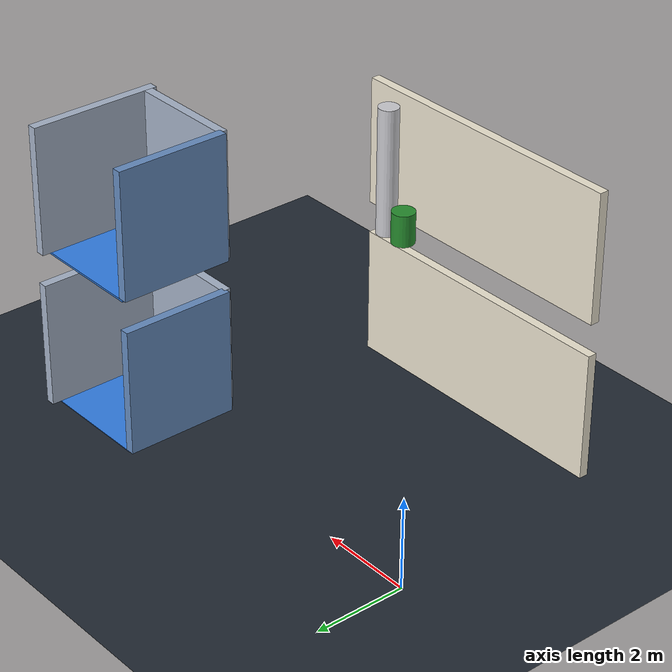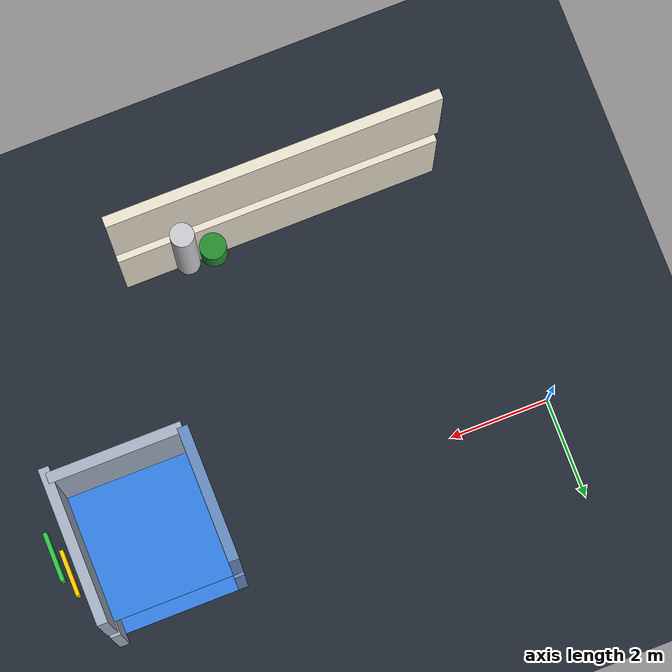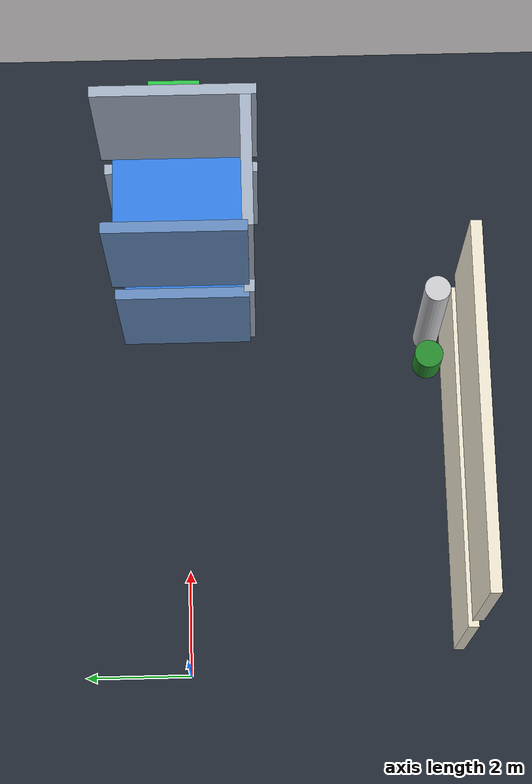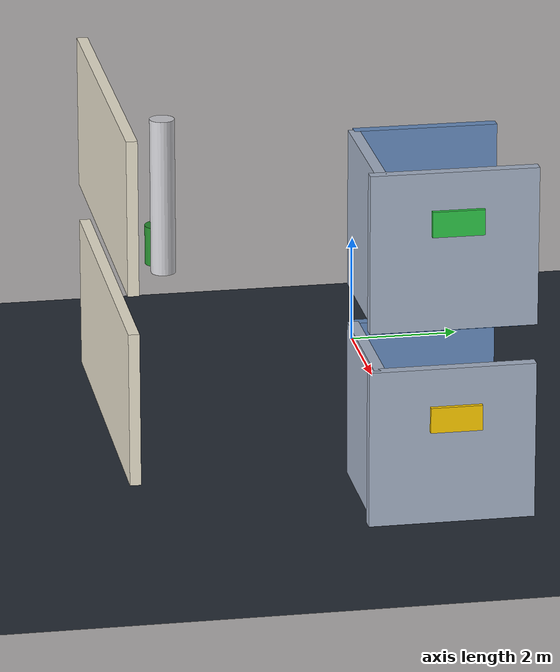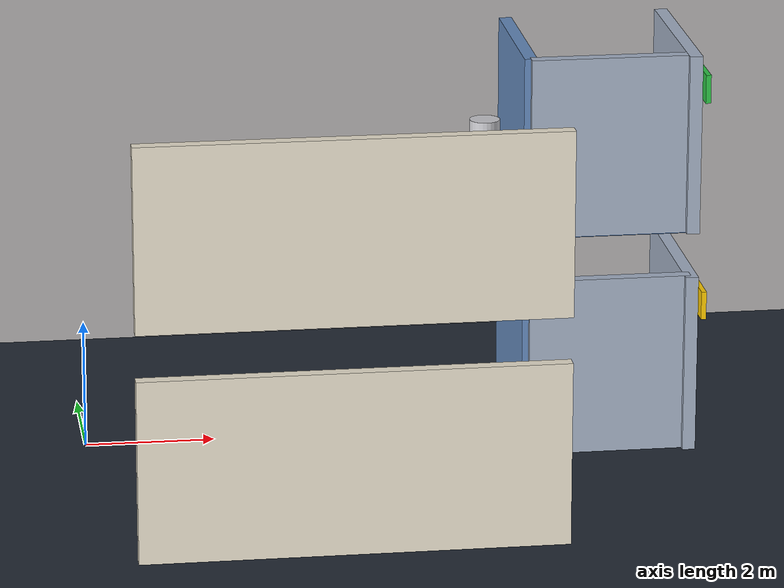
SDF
<sdf version="1.6">
 <world name="hotel_two_floor">
  <model name="ground_plane">
   <static>true</static>
   <link name="link">
    <collision name="col">
     <geometry><plane><normal>0 0 1</normal><size>100 100</size></plane></geometry>
    </collision>
    <visual name="vis">
     <geometry><plane><normal>0 0 1</normal><size>100 100</size></plane></geometry>
     <material><ambient>0.13 0.16 0.20 1</ambient><diffuse>0.13 0.16 0.20 1</diffuse></material>
    </visual>
   </link>
  </model>
  <model name="f1_seg_s_4">
   <static>true</static>
   <pose>3.5750 -5.1000 1.4000 0 0 0</pose>
   <link name="link">
    <collision name="col"><geometry><box><size>6.3500 0.2000 2.8000</size></box></geometry></collision>
    <visual name="vis">
     <geometry><box><size>6.3500 0.2000 2.8000</size></box></geometry>
     <material>
      <ambient>0.93 0.90 0.82 1</ambient>
      <diffuse>0.93 0.90 0.82 1</diffuse>
      <specular>0.10 0.10 0.10 1</specular>
     </material>
    </visual>
   </link>
  </model>
  <model name="f1_elev_back">
   <static>true</static>
   <pose>9.2500 0.0000 1.4000 0 0 0</pose>
   <link name="link">
    <collision name="col"><geometry><box><size>0.2000 2.9000 2.8000</size></box></geometry></collision>
    <visual name="vis">
     <geometry><box><size>0.2000 2.9000 2.8000</size></box></geometry>
     <material>
      <ambient>0.65 0.70 0.78 1</ambient>
      <diffuse>0.65 0.70 0.78 1</diffuse>
      <specular>0.60 0.60 0.60 1</specular>
     </material>
    </visual>
   </link>
  </model>
  <model name="f1_elev_L">
   <static>true</static>
   <pose>8.0000 -1.2500 1.4000 0 0 0</pose>
   <link name="link">
    <collision name="col"><geometry><box><size>2.5000 0.2000 2.8000</size></box></geometry></collision>
    <visual name="vis">
     <geometry><box><size>2.5000 0.2000 2.8000</size></box></geometry>
     <material>
      <ambient>0.65 0.70 0.78 1</ambient>
      <diffuse>0.65 0.70 0.78 1</diffuse>
      <specular>0.60 0.60 0.60 1</specular>
     </material>
    </visual>
   </link>
  </model>
  <model name="f1_elev_floor">
   <static>true</static>
   <pose>8.0000 0.0000 -0.0200 0 0 0</pose>
   <link name="link">
    <collision name="col"><geometry><box><size>2.5000 2.5000 0.0400</size></box></geometry></collision>
    <visual name="vis">
     <geometry><box><size>2.5000 2.5000 0.0400</size></box></geometry>
     <material>
      <ambient>0.20 0.50 0.90 1</ambient>
      <diffuse>0.20 0.50 0.90 1</diffuse>
      <specular>0.40 0.40 0.40 1</specular>
     </material>
    </visual>
   </link>
  </model>
  <model name="f1_kat_sign">
   <static>true</static>
   <pose>9.6500 0.0000 2.0000 0 0 0</pose>
   <link name="link">
    <collision name="col"><geometry><box><size>0.0800 0.9000 0.4500</size></box></geometry></collision>
    <visual name="vis">
     <geometry><box><size>0.0800 0.9000 0.4500</size></box></geometry>
     <material>
      <ambient>1.00 0.80 0.00 1</ambient>
      <diffuse>1.00 0.80 0.00 1</diffuse>
      <specular>0.10 0.10 0.10 1</specular>
     </material>
    </visual>
   </link>
  </model>
  <model name="f1_elev_door">
   <static>false</static>
   <pose>6.7500 0.0000 1.4000 0 0 0</pose>
   <link name="door">
    <gravity>false</gravity>
    <kinematic>true</kinematic>
    <inertial>
     <mass>50.0</mass>
     <inertia><ixx>10</ixx><ixy>0</ixy><ixz>0</ixz><iyy>10</iyy><iyz>0</iyz><izz>10</izz></inertia>
    </inertial>
    <collision name="col"><geometry><box><size>0.2000 2.5000 2.8000</size></box></geometry></collision>
    <visual name="vis">
     <geometry><box><size>0.2000 2.5000 2.8000</size></box></geometry>
     <material>
      <ambient>0.40 0.55 0.75 1</ambient>
      <diffuse>0.40 0.55 0.75 1</diffuse>
      <specular>0.80 0.80 0.80 1</specular>
     </material>
    </visual>
   </link>
  </model>
  <model name="f1_room_s_104_2_g">
   <static>true</static>
   <pose>1.0400 -5.1000 1.6500 0 0 0</pose>
   <link name="link">
    <visual name="vis">
     <geometry><box><size>0.2600 0.0200 0.0500</size></box></geometry>
     <material>
      <ambient>0.98 0.98 0.98 1</ambient>
      <diffuse>0.98 0.98 0.98 1</diffuse>
      <specular>0.20 0.20 0.20 1</specular>
     </material>
    </visual>
   </link>
  </model>
  <model name="f1_room_s_104_2_b">
   <static>true</static>
   <pose>1.1700 -5.1000 1.7550 0 0 0</pose>
   <link name="link">
    <visual name="vis">
     <geometry><box><size>0.0500 0.0200 0.2100</size></box></geometry>
     <material>
      <ambient>0.98 0.98 0.98 1</ambient>
      <diffuse>0.98 0.98 0.98 1</diffuse>
      <specular>0.20 0.20 0.20 1</specular>
     </material>
    </visual>
   </link>
  </model>
  <model name="f1_room_s_104_2_c">
   <static>true</static>
   <pose>1.1700 -5.1000 1.5450 0 0 0</pose>
   <link name="link">
    <visual name="vis">
     <geometry><box><size>0.0500 0.0200 0.2100</size></box></geometry>
     <material>
      <ambient>0.98 0.98 0.98 1</ambient>
      <diffuse>0.98 0.98 0.98 1</diffuse>
      <specular>0.20 0.20 0.20 1</specular>
     </material>
    </visual>
   </link>
  </model>
  <model name="f2_seg_s_4">
   <static>true</static>
   <pose>3.5750 -5.1000 4.9000 0 0 0</pose>
   <link name="link">
    <collision name="col"><geometry><box><size>6.3500 0.2000 2.8000</size></box></geometry></collision>
    <visual name="vis">
     <geometry><box><size>6.3500 0.2000 2.8000</size></box></geometry>
     <material>
      <ambient>0.93 0.90 0.82 1</ambient>
      <diffuse>0.93 0.90 0.82 1</diffuse>
      <specular>0.10 0.10 0.10 1</specular>
     </material>
    </visual>
   </link>
  </model>
  <model name="f2_elev_back">
   <static>true</static>
   <pose>9.2500 0.0000 4.9000 0 0 0</pose>
   <link name="link">
    <collision name="col"><geometry><box><size>0.2000 2.9000 2.8000</size></box></geometry></collision>
    <visual name="vis">
     <geometry><box><size>0.2000 2.9000 2.8000</size></box></geometry>
     <material>
      <ambient>0.65 0.70 0.78 1</ambient>
      <diffuse>0.65 0.70 0.78 1</diffuse>
      <specular>0.60 0.60 0.60 1</specular>
     </material>
    </visual>
   </link>
  </model>
  <model name="f2_elev_L">
   <static>true</static>
   <pose>8.0000 -1.2500 4.9000 0 0 0</pose>
   <link name="link">
    <collision name="col"><geometry><box><size>2.5000 0.2000 2.8000</size></box></geometry></collision>
    <visual name="vis">
     <geometry><box><size>2.5000 0.2000 2.8000</size></box></geometry>
     <material>
      <ambient>0.65 0.70 0.78 1</ambient>
      <diffuse>0.65 0.70 0.78 1</diffuse>
      <specular>0.60 0.60 0.60 1</specular>
     </material>
    </visual>
   </link>
  </model>
  <model name="f2_elev_floor">
   <static>true</static>
   <pose>8.0000 0.0000 3.4800 0 0 0</pose>
   <link name="link">
    <collision name="col"><geometry><box><size>2.5000 2.5000 0.0400</size></box></geometry></collision>
    <visual name="vis">
     <geometry><box><size>2.5000 2.5000 0.0400</size></box></geometry>
     <material>
      <ambient>0.20 0.50 0.90 1</ambient>
      <diffuse>0.20 0.50 0.90 1</diffuse>
      <specular>0.40 0.40 0.40 1</specular>
     </material>
    </visual>
   </link>
  </model>
  <model name="f2_kat_sign">
   <static>true</static>
   <pose>9.6500 0.0000 5.5000 0 0 0</pose>
   <link name="link">
    <collision name="col"><geometry><box><size>0.0800 0.9000 0.4500</size></box></geometry></collision>
    <visual name="vis">
     <geometry><box><size>0.0800 0.9000 0.4500</size></box></geometry>
     <material>
      <ambient>0.18 0.78 0.28 1</ambient>
      <diffuse>0.18 0.78 0.28 1</diffuse>
      <specular>0.10 0.10 0.10 1</specular>
     </material>
    </visual>
   </link>
  </model>
  <model name="f2_elev_door">
   <static>false</static>
   <pose>6.7500 0.0000 4.9000 0 0 0</pose>
   <link name="door">
    <gravity>false</gravity>
    <kinematic>true</kinematic>
    <inertial>
     <mass>50.0</mass>
     <inertia><ixx>10</ixx><ixy>0</ixy><ixz>0</ixz><iyy>10</iyy><iyz>0</iyz><izz>10</izz></inertia>
    </inertial>
    <collision name="col"><geometry><box><size>0.2000 2.5000 2.8000</size></box></geometry></collision>
    <visual name="vis">
     <geometry><box><size>0.2000 2.5000 2.8000</size></box></geometry>
     <material>
      <ambient>0.40 0.55 0.75 1</ambient>
      <diffuse>0.40 0.55 0.75 1</diffuse>
      <specular>0.80 0.80 0.80 1</specular>
     </material>
    </visual>
   </link>
  </model>
  <model name="f2_col_L">
   <static>true</static>
   <pose>5.5500 -4.4000 4.9000 0 0 0</pose>
   <link name="link">
    <collision name="col">
     <geometry><cylinder><radius>0.22</radius><length>2.8</length></cylinder></geometry>
    </collision>
    <visual name="vis">
     <geometry><cylinder><radius>0.22</radius><length>2.8</length></cylinder></geometry>
     <material>
      <ambient>0.80 0.80 0.82 1</ambient>
      <diffuse>0.80 0.80 0.82 1</diffuse>
      <specular>0.50 0.50 0.50 1</specular>
     </material>
    </visual>
   </link>
  </model>
  <model name="f2_plant_L">
   <static>true</static>
   <pose>5.0500 -4.4000 3.8500 0 0 0</pose>
   <link name="link">
    <collision name="col">
     <geometry><cylinder><radius>0.25</radius><length>0.7</length></cylinder></geometry>
    </collision>
    <visual name="vis">
     <geometry><cylinder><radius>0.25</radius><length>0.7</length></cylinder></geometry>
     <material>
      <ambient>0.15 0.55 0.18 1</ambient>
      <diffuse>0.15 0.55 0.18 1</diffuse>
      <specular>0.10 0.10 0.10 1</specular>
     </material>
    </visual>
   </link>
  </model>
  <model name="f2_room_s_204_2_g">
   <static>true</static>
   <pose>1.0400 -5.1000 5.1500 0 0 0</pose>
   <link name="link">
    <visual name="vis">
     <geometry><box><size>0.2600 0.0200 0.0500</size></box></geometry>
     <material>
      <ambient>0.98 0.98 0.98 1</ambient>
      <diffuse>0.98 0.98 0.98 1</diffuse>
      <specular>0.20 0.20 0.20 1</specular>
     </material>
    </visual>
   </link>
  </model>
  <model name="f2_room_s_204_2_b">
   <static>true</static>
   <pose>1.1700 -5.1000 5.2550 0 0 0</pose>
   <link name="link">
    <visual name="vis">
     <geometry><box><size>0.0500 0.0200 0.2100</size></box></geometry>
     <material>
      <ambient>0.98 0.98 0.98 1</ambient>
      <diffuse>0.98 0.98 0.98 1</diffuse>
      <specular>0.20 0.20 0.20 1</specular>
     </material>
    </visual>
   </link>
  </model>
  <model name="f2_room_s_204_2_c">
   <static>true</static>
   <pose>1.1700 -5.1000 5.0450 0 0 0</pose>
   <link name="link">
    <visual name="vis">
     <geometry><box><size>0.0500 0.0200 0.2100</size></box></geometry>
     <material>
      <ambient>0.98 0.98 0.98 1</ambient>
      <diffuse>0.98 0.98 0.98 1</diffuse>
      <specular>0.20 0.20 0.20 1</specular>
     </material>
    </visual>
   </link>
  </model>
 </world>
</sdf>
